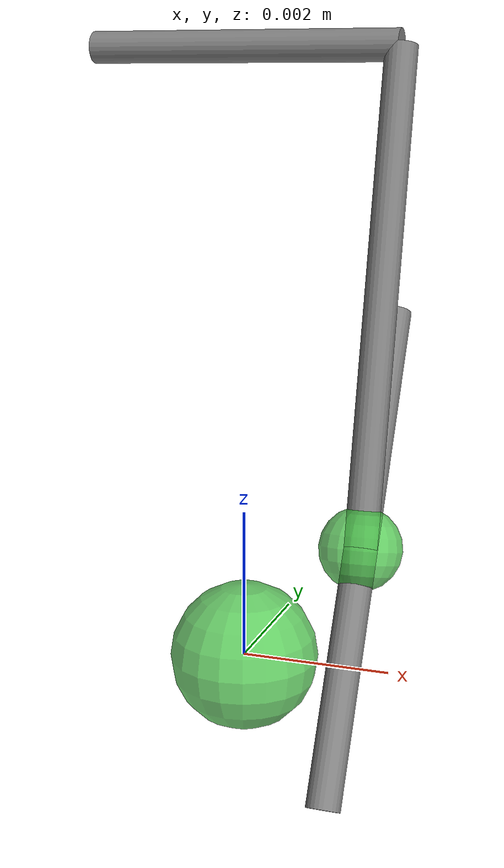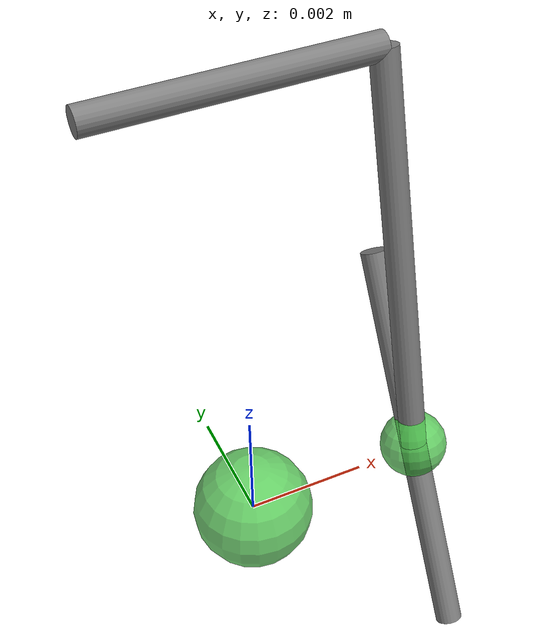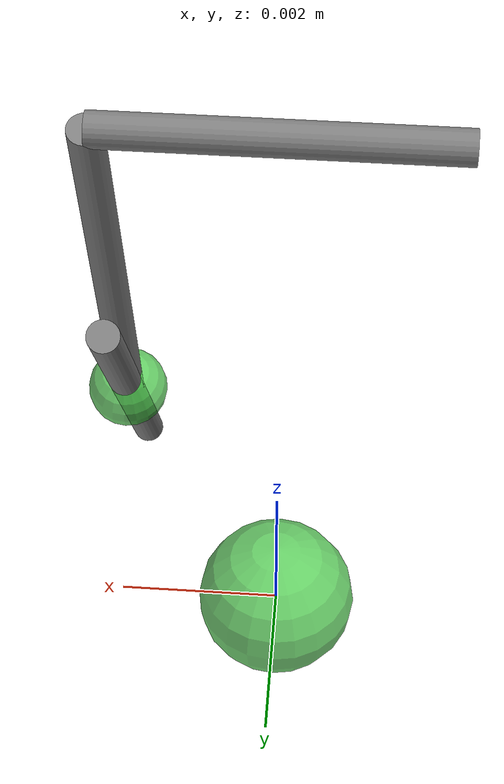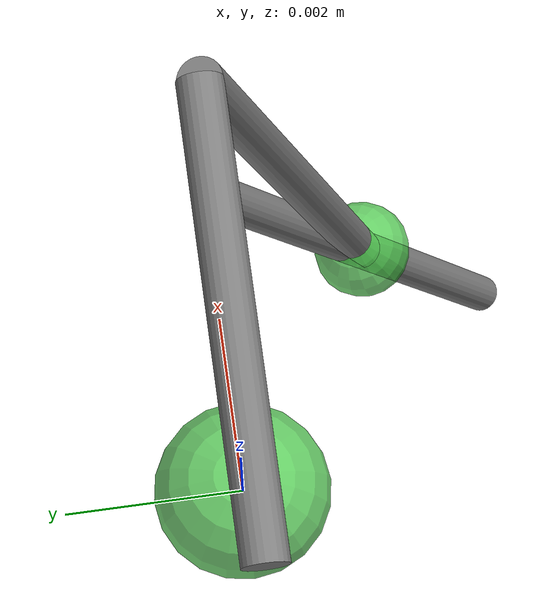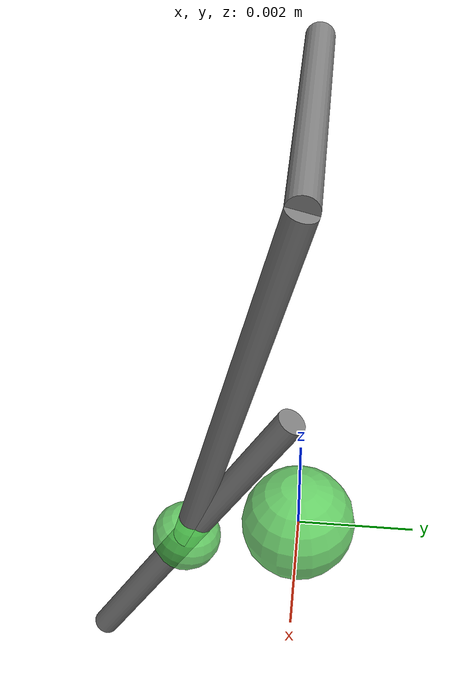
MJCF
<?xml version="1.0" encoding="utf-8"?>
<mujoco model="mouse">
  <option integrator="RK4" timestep="0.01" gravity="0 0 -9.81" solver="CG" iterations="20" ls_iterations="20"></option>

  <default>
	<joint limited="true" solreflimit="0.01 1" solimplimit="0.99 0.9999 0" armature="4e-06" damping="0.001" stiffness="0.001"/>
	</default>
  <size njmax="1000" nconmax="400" nkey="1" nuser_jnt="1"/>
  <visual>
    <scale framelength="1.0" framewidth="0.02"/>
  </visual>
  <asset>
    <texture type="skybox" builtin="gradient" rgb1="1 1 1" rgb2="0.6 0.8 1" width="256" height="1536"/>
    <texture name="grid" type="2d" builtin="checker" width="512" height="512" rgb1=".1 .2 .3" rgb2=".2 .3 .4"/>
    <material name="grid" texture="grid" texrepeat="1 1" texuniform="true" reflectance=".2"/>
    <mesh file="/stl/Bone_Segments_Hand_fixed.stl"/>

  </asset>
  <worldbody>
    <light directional="true"/>
    <geom name="origin" type="sphere" size="0.001" pos="0 0 0 " rgba="0.3 0.8 0.3 0.8"/>

    <body name="ground" euler="0 0 0">
      <camera name="my_camera" pos="0.04 .004 0.037" fovy="20" quat="0.6532815 0.2705981 0.2705981 0.6532815"/>

      <body name="clavicle" pos="0 0 .008" euler="0 0 0">
        <geom name="clavicle_geom"
              size="0.0002 0.002"
              type="cylinder"
              pos="0 0 0"
              euler="0 90 0"
              contype="1"
              conaffinity="0"
        />

        <body name="humerus" pos=".002 0 0" euler="-15 0 0">
          <geom name="humerus_geom"
              size="0.0002 0.003"
              type="cylinder"
              pos="0 0 -0.003"
              contype="1"
              conaffinity="0"
          />

          <joint name="sh_elv" type="hinge" pos="0 0 0" axis="0 1 0" range="-70 0" limited="true"/>
          <!-- Extension Joint: Yaw around Z-axis -->
          <joint name="sh_extension" type="hinge" pos="0 0 0" axis="0 0 1" range="-70 40" limited="true"/>
          <!-- Rotation Joint: Roll around X-axis -->
          <joint name="sh_rotation" type="hinge" pos="0 0 0" axis="1 0 0" range="-25 89" limited="true"/>

          <body name="elbow" pos="0 0 -0.006">
            <geom name="elbow_marker" type="sphere" size="0.0005" rgba="0.3 0.8 0.3 0.8"/>

            <joint name="elbow_joint" type="hinge" pos="0 0 0" axis="1 0 0" range="-80 90"/>

            <body name="ulna" pos="0 0 0" euler="-15 0 0">
              <geom name="ulna_geom"
                    type="cylinder"
                    size="0.0002 0.003"
              />
            </body>

          </body>

        </body>

      </body>
    </body>
  </worldbody>
</mujoco>
